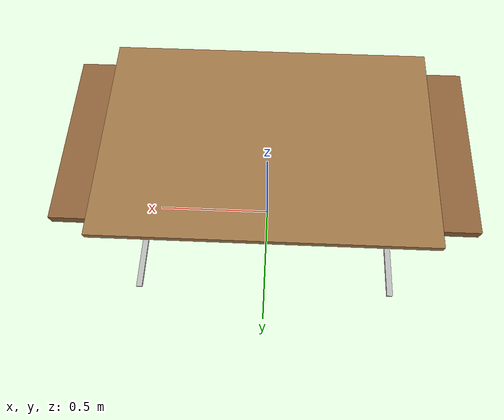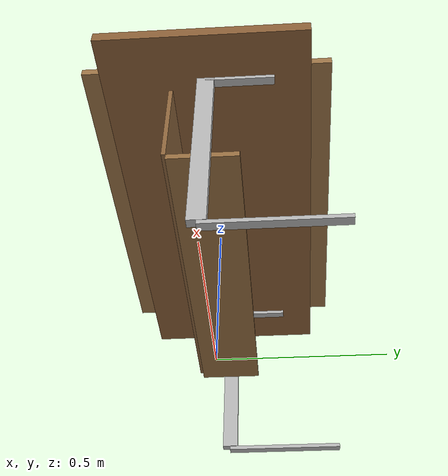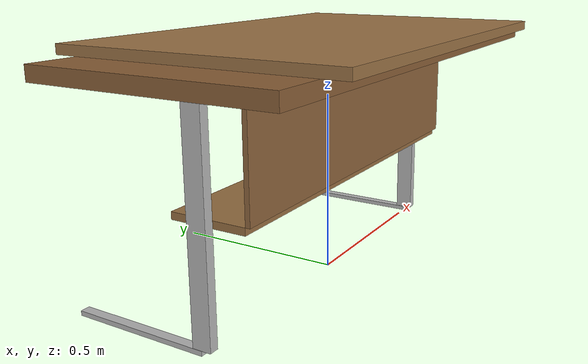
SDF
<?xml version="1.0" ?>
<sdf version="1.6">
  <model name="L_leg_table_55p5x24p5x25p5">
    <static>true</static>

    <link name="table">
      <!-- Tabletop -->
      <visual name="top_vis">
        <pose>0 0 0.62865 0 0 0</pose>
        <geometry><box><size>1.4097 0.6223 0.0381</size></box></geometry>
        <material>
          <ambient>0.25 0.18 0.12 1</ambient>
          <diffuse>0.55 0.38 0.22 1</diffuse>
          <specular>0.05 0.05 0.05 1</specular>
        </material>
      </visual>
      <collision name="top_col">
        <pose>0 0 0.62865 0 0 0</pose>
        <geometry><box><size>1.4097 0.6223 0.0381</size></box></geometry>
      </collision>

            <!-- ===== L-LEG RIGHT (+X) ===== -->
      <!-- Foot (forward, on floor) -->
      <visual name="legR_foot_vis">
        <pose>0.55245 0.1905 0.00635 0 0 0</pose>
        <geometry>
          <!-- 1" thickness (0.0254) × 3" width (0.0762) × 15" length (0.3810) -->
          <box><size>0.0254 0.3810 0.0127</size></box>
        </geometry>
      </visual>
      <collision name="legR_foot_col">
        <pose>0.55245 0.1905 0.00635 0 0 0</pose>
        <geometry><box><size>0.0254 0.3810 0.0127</size></box></geometry>
      </collision>

      <!-- Vertical post -->
      <visual name="legR_post_vis">
        <pose>0.55245 0 0.31180 0 0 0</pose>
        <geometry>
          <!-- 1" × 2" cross-section, height ~0.5969 -->
          <box><size>0.0254 0.0508 0.5969</size></box>
        </geometry>
      </visual>
      <collision name="legR_post_col">
        <pose>0.55245 0 0.31180 0 0 0</pose>
        <geometry><box><size>0.0254 0.0508 0.5969</size></box></geometry>
      </collision>

      <!-- Top bracket -->
      <visual name="legR_bracket_vis">
        <pose>0.55245 0.1016 0.60325 0 0 0</pose>
        <geometry>
          <box><size>0.0254 0.2032 0.0127</size></box>
        </geometry>
      </visual>
      <collision name="legR_bracket_col">
        <pose>0.55245 0.1016 0.60325 0 0 0</pose>
        <geometry><box><size>0.0254 0.2032 0.0127</size></box></geometry>
      </collision>

      <!-- ===== L-LEG LEFT (−X) ===== -->
      <visual name="legL_foot_vis">
        <pose>-0.55245 0.1905 0.00635 0 0 0</pose>
        <geometry><box><size>0.0254 0.3810 0.0127</size></box></geometry>
      </visual>
      <collision name="legL_foot_col">
        <pose>-0.55245 0.1905 0.00635 0 0 0</pose>
        <geometry><box><size>0.0254 0.3810 0.0127</size></box></geometry>
      </collision>

      <visual name="legL_post_vis">
        <pose>-0.55245 0 0.31180 0 0 0</pose>
        <geometry><box><size>0.0254 0.0508 0.5969</size></box></geometry>
      </visual>
      <collision name="legL_post_col">
        <pose>-0.55245 0 0.31180 0 0 0</pose>
        <geometry><box><size>0.0254 0.0508 0.5969</size></box></geometry>
      </collision>

      <visual name="legL_bracket_vis">
        <pose>-0.55245 0.1016 0.60325 0 0 0</pose>
        <geometry><box><size>0.0254 0.2032 0.0127</size></box></geometry>
      </visual>
      <collision name="legL_bracket_col">
        <pose>-0.55245 0.1016 0.60325 0 0 0</pose>
        <geometry><box><size>0.0254 0.2032 0.0127</size></box></geometry>
      </collision>

      <!-- ===== Shelf between posts ===== -->
      <visual name="shelf_vis">
        <pose>0 0 0.301625 0 0 0</pose>
        <geometry><box><size>1.05410 0.2032 0.01905</size></box></geometry>
        <material>
          <ambient>0.30 0.22 0.15 1</ambient>
          <diffuse>0.60 0.44 0.26 1</diffuse>
          <specular>0.05 0.05 0.05 1</specular>
        </material>
      </visual>
      <collision name="shelf_col">
        <pose>0 0 0.301625 0 0 0</pose>
        <geometry><box><size>1.05410 0.2032 0.01905</size></box></geometry>
      </collision>

      <!-- ===== Backboard closing the rear of the shelf (at −Y) ===== -->
      <visual name="shelf_backboard_vis">
        <pose>0 -0.10795 0.460375 0 0 0</pose>
        <geometry><box><size>1.05410 0.0127 0.29845</size></box></geometry>
        <material>
          <ambient>0.28 0.20 0.14 1</ambient>
          <diffuse>0.56 0.40 0.24 1</diffuse>
          <specular>0.05 0.05 0.05 1</specular>
        </material>
      </visual>
      <collision name="shelf_backboard_col">
        <pose>0 -0.10795 0.460375 0 0 0</pose>
        <geometry><box><size>1.05410 0.0127 0.29845</size></box></geometry>
      </collision>
            <!-- ===== Extra wood board on top: 45in x 29.5in x 1in ===== -->
      <!-- Sizes (m): 45"=1.1430, 29.5"=0.7493, 1"=0.0254 -->
      <!-- Table top upper surface z = 0.6477 ; board center z = 0.6477 + 0.0127 = 0.6604 -->
      <visual name="top_board_vis">
        <pose>0 0 0.6604 0 0 0</pose>
        <geometry>
          <box><size>1.1430 0.7493 0.0254</size></box>
        </geometry>
        <material>
          <ambient>0.30 0.22 0.15 1</ambient>
          <diffuse>0.62 0.46 0.28 1</diffuse>
          <specular>0.05 0.05 0.05 1</specular>
        </material>
      </visual>
      <collision name="top_board_col">
        <pose>0 0 0.6604 0 0 0</pose>
        <geometry>
          <box><size>1.1430 0.7493 0.0254</size></box>
        </geometry>
      </collision>

    </link>
  </model>
</sdf>
